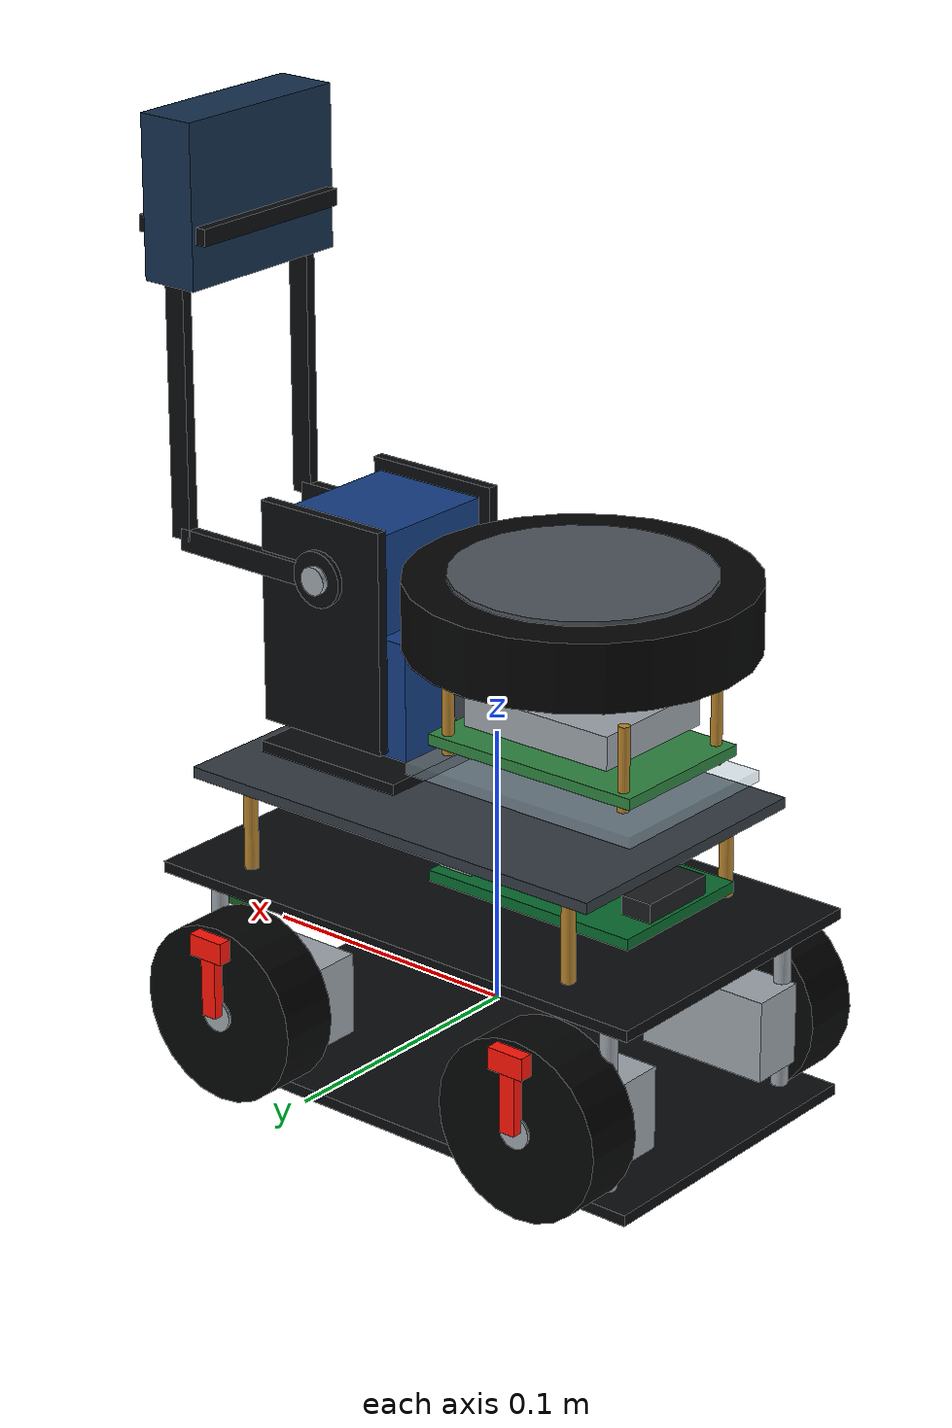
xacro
<?xml version="1.0"?>
<robot xmlns:xacro="http://www.ros.org/wiki/xacro" name="small_car">
  <xacro:include filename="$(find small_car_description)/urdf/robot_geometry.xacro"/>

  <material name="metal_black"><color rgba="0.035 0.040 0.045 1.0"/></material>
  <material name="plastic_black"><color rgba="0.012 0.014 0.016 1.0"/></material>
  <material name="dark_gray"><color rgba="0.10 0.11 0.12 1.0"/></material>
  <material name="plate_gray"><color rgba="0.20 0.23 0.26 1.0"/></material>
  <material name="mcu_green"><color rgba="0.03 0.42 0.18 1.0"/></material>
  <material name="pi_green"><color rgba="0.18 0.52 0.25 1.0"/></material>
  <material name="sensor_green"><color rgba="0.08 0.36 0.14 1.0"/></material>
  <material name="sensor_blue"><color rgba="0.10 0.40 0.82 1.0"/></material>
  <material name="servo_blue"><color rgba="0.08 0.24 0.52 1.0"/></material>
  <material name="camera_blue"><color rgba="0.08 0.18 0.30 1.0"/></material>
  <material name="imu_orange"><color rgba="0.95 0.42 0.08 1.0"/></material>
  <material name="wheel_marker"><color rgba="1.00 0.08 0.03 1.0"/></material>
  <material name="speaker_gray"><color rgba="0.30 0.33 0.36 1.0"/></material>
  <material name="aluminum"><color rgba="0.62 0.65 0.68 1.0"/></material>
  <material name="brass"><color rgba="0.72 0.52 0.18 1.0"/></material>
  <material name="acrylic"><color rgba="0.72 0.82 0.88 0.45"/></material>
  <material name="lens"><color rgba="0.02 0.06 0.10 1.0"/></material>

  <xacro:macro name="box_visual" params="xyz rpy size material">
    <visual>
      <origin xyz="${xyz}" rpy="${rpy}"/>
      <geometry><box size="${size}"/></geometry>
      <material name="${material}"/>
    </visual>
  </xacro:macro>

  <xacro:macro name="cylinder_visual" params="xyz rpy radius length material">
    <visual>
      <origin xyz="${xyz}" rpy="${rpy}"/>
      <geometry><cylinder radius="${radius}" length="${length}"/></geometry>
      <material name="${material}"/>
    </visual>
  </xacro:macro>

  <!-- base_link 位于四个车轮轴线围成的矩形中心。 -->
  <link name="base_link">
    <xacro:box_visual xyz="0 0 ${lower_deck_z}" rpy="0 0 0"
                      size="${chassis_length} ${chassis_width} ${deck_thickness}"
                      material="metal_black"/>
    <xacro:box_visual xyz="0 0 ${main_deck_z}" rpy="0 0 0"
                      size="${chassis_length} ${chassis_width} ${deck_thickness}"
                      material="metal_black"/>

    <!-- 四个减速电机位于车轮内侧。 -->
    <xacro:box_visual xyz="0.066 0.043 0" rpy="0 0 0"
                      size="0.050 0.027 0.030" material="aluminum"/>
    <xacro:box_visual xyz="0.066 -0.043 0" rpy="0 0 0"
                      size="0.050 0.027 0.030" material="aluminum"/>
    <xacro:box_visual xyz="-0.066 0.043 0" rpy="0 0 0"
                      size="0.050 0.027 0.030" material="aluminum"/>
    <xacro:box_visual xyz="-0.066 -0.043 0" rpy="0 0 0"
                      size="0.050 0.027 0.030" material="aluminum"/>

    <!-- 下层板与主承载板之间的四根金属立柱。 -->
    <xacro:cylinder_visual xyz="0.086 0.048 0.0075" rpy="0 0 0"
                           radius="0.003" length="0.063" material="aluminum"/>
    <xacro:cylinder_visual xyz="0.086 -0.048 0.0075" rpy="0 0 0"
                           radius="0.003" length="0.063" material="aluminum"/>
    <xacro:cylinder_visual xyz="-0.086 0.048 0.0075" rpy="0 0 0"
                           radius="0.003" length="0.063" material="aluminum"/>
    <xacro:cylinder_visual xyz="-0.086 -0.048 0.0075" rpy="0 0 0"
                           radius="0.003" length="0.063" material="aluminum"/>

    <!-- 用简单包围盒表示底盘碰撞体，避免视觉细节增加碰撞计算量。 -->
    <collision>
      <origin xyz="0 0 0.0075"/>
      <geometry><box size="${chassis_length} 0.105 0.067"/></geometry>
    </collision>
  </link>

  <xacro:macro name="wheel" params="prefix x y axis_y">
    <link name="${prefix}_wheel_link">
      <xacro:cylinder_visual xyz="0 0 0" rpy="1.57079632679 0 0"
                             radius="${wheel_radius}" length="${wheel_width}"
                             material="plastic_black"/>
    <xacro:cylinder_visual xyz="0 0 0" rpy="1.57079632679 0 0"
                             radius="0.006" length="${wheel_width + 0.002}"
                             material="aluminum"/>
      <!--
        红色非对称辐条位于轮胎外侧。它从轮心指向轮缘，随 wheel_link
        一起旋转，因此既能观察旋转方向，也不会产生 180 度视觉混淆。
      -->
      <xacro:box_visual
          xyz="0 ${axis_y * (wheel_width / 2.0 + 0.0025)} ${wheel_radius * 0.42}"
          rpy="0 0 0" size="0.006 0.004 0.026" material="wheel_marker"/>
      <xacro:box_visual
          xyz="0 ${axis_y * (wheel_width / 2.0 + 0.0030)} ${wheel_radius * 0.82}"
          rpy="0 0 0" size="0.014 0.005 0.008" material="wheel_marker"/>
      <collision>
        <origin rpy="1.57079632679 0 0"/>
        <geometry><cylinder radius="${wheel_radius}" length="${wheel_width}"/></geometry>
      </collision>
    </link>
    <joint name="${prefix}_wheel_joint" type="continuous">
      <parent link="base_link"/>
      <child link="${prefix}_wheel_link"/>
      <origin xyz="${x} ${y} 0"/>
      <axis xyz="0 ${axis_y} 0"/>
    </joint>
  </xacro:macro>

  <xacro:wheel prefix="front_left" x="${wheelbase / 2.0}"
               y="${wheel_track / 2.0}" axis_y="1"/>
  <xacro:wheel prefix="rear_left" x="${-wheelbase / 2.0}"
               y="${wheel_track / 2.0}" axis_y="1"/>
  <xacro:wheel prefix="front_right" x="${wheelbase / 2.0}"
               y="${-wheel_track / 2.0}" axis_y="-1"/>
  <xacro:wheel prefix="rear_right" x="${-wheelbase / 2.0}"
               y="${-wheel_track / 2.0}" axis_y="-1"/>

  <!-- 摄像头、树莓派和音响共用的新增载荷安装板。 -->
  <link name="upper_plate_link">
    <xacro:box_visual xyz="0 0 0" rpy="0 0 0" size="${upper_plate_size}"
                      material="plate_gray"/>
    <xacro:cylinder_visual xyz="0.070 0.043 -0.018" rpy="0 0 0"
                           radius="0.0025" length="0.034" material="brass"/>
    <xacro:cylinder_visual xyz="0.070 -0.043 -0.018" rpy="0 0 0"
                           radius="0.0025" length="0.034" material="brass"/>
    <xacro:cylinder_visual xyz="-0.070 0.043 -0.018" rpy="0 0 0"
                           radius="0.0025" length="0.034" material="brass"/>
    <xacro:cylinder_visual xyz="-0.070 -0.043 -0.018" rpy="0 0 0"
                           radius="0.0025" length="0.034" material="brass"/>
  </link>
  <joint name="upper_plate_joint" type="fixed">
    <parent link="base_link"/>
    <child link="upper_plate_link"/>
    <origin xyz="${upper_plate_xyz}"/>
  </joint>

  <!-- C30D MCU 主控板位于两层安装板之间，并保持水平。 -->
  <link name="mcu_link">
    <xacro:box_visual xyz="0 0 0" rpy="0 0 0" size="${mcu_size}"
                      material="mcu_green"/>
    <xacro:box_visual xyz="0.005 0 0.005" rpy="0 0 0" size="0.026 0.026 0.006"
                      material="plastic_black"/>
    <xacro:box_visual xyz="0.035 0.018 0.005" rpy="0 0 0" size="0.014 0.012 0.008"
                      material="aluminum"/>
    <xacro:box_visual xyz="0.035 -0.018 0.005" rpy="0 0 0" size="0.014 0.012 0.008"
                      material="aluminum"/>
    <xacro:box_visual xyz="-0.035 0 0.005" rpy="0 0 0" size="0.012 0.030 0.008"
                      material="dark_gray"/>
  </link>
  <joint name="mcu_joint" type="fixed">
    <parent link="base_link"/>
    <child link="mcu_link"/>
    <origin xyz="${mcu_xyz}"/>
  </joint>

  <!-- IMU 是 MCU 板上的板载器件，水平姿态与 PCB 一致。 -->
  <link name="imu_link">
    <xacro:box_visual xyz="0 0 0" rpy="0 0 0" size="0.015 0.015 0.004"
                      material="imu_orange"/>
  </link>
  <joint name="imu_joint" type="fixed">
    <parent link="mcu_link"/>
    <child link="imu_link"/>
    <origin xyz="${imu_xyz}" rpy="${imu_rpy}"/>
  </joint>

  <!-- HC-SR04 类双探头超声模块。 -->
  <link name="ultrasonic_link">
    <xacro:box_visual xyz="-0.006 0 0" rpy="0 0 0" size="0.012 0.050 0.022"
                      material="sensor_green"/>
    <xacro:cylinder_visual xyz="0 0.012 0" rpy="0 1.57079632679 0"
                           radius="0.008" length="0.014" material="aluminum"/>
    <xacro:cylinder_visual xyz="0 -0.012 0" rpy="0 1.57079632679 0"
                           radius="0.008" length="0.014" material="aluminum"/>
  </link>
  <joint name="ultrasonic_joint" type="fixed">
    <parent link="base_link"/>
    <child link="ultrasonic_link"/>
    <origin xyz="${ultrasonic_xyz}" rpy="${ultrasonic_rpy}"/>
  </joint>

  <!-- 树莓派、透明安装板和顶部散热器。 -->
  <link name="computer_link">
    <xacro:box_visual xyz="0 0 -0.010" rpy="0 0 0" size="0.095 0.070 0.004"
                      material="acrylic"/>
    <xacro:box_visual xyz="0 0 0" rpy="0 0 0" size="${computer_size}"
                      material="pi_green"/>
    <xacro:box_visual xyz="0 0 0.013" rpy="0 0 0" size="0.060 0.050 0.012"
                      material="aluminum"/>
    <xacro:cylinder_visual xyz="0.037 0.025 0.010" rpy="0 0 0"
                           radius="0.002" length="0.030" material="brass"/>
    <xacro:cylinder_visual xyz="0.037 -0.025 0.010" rpy="0 0 0"
                           radius="0.002" length="0.030" material="brass"/>
    <xacro:cylinder_visual xyz="-0.037 0.025 0.010" rpy="0 0 0"
                           radius="0.002" length="0.030" material="brass"/>
    <xacro:cylinder_visual xyz="-0.037 -0.025 0.010" rpy="0 0 0"
                           radius="0.002" length="0.030" material="brass"/>
  </link>
  <joint name="computer_joint" type="fixed">
    <parent link="base_link"/>
    <child link="computer_link"/>
    <origin xyz="${computer_xyz}"/>
  </joint>

  <!-- Jabra 圆形 USB 音响，平放在树莓派上方。 -->
  <link name="speaker_link">
    <xacro:cylinder_visual xyz="0 0 0" rpy="0 0 0"
                           radius="${speaker_radius}" length="${speaker_height}"
                           material="plastic_black"/>
    <xacro:cylinder_visual xyz="0 0 0.0125" rpy="0 0 0"
                           radius="0.045" length="0.002" material="speaker_gray"/>
  </link>
  <joint name="speaker_joint" type="fixed">
    <parent link="base_link"/>
    <child link="speaker_link"/>
    <origin xyz="${speaker_xyz}"/>
  </joint>

  <!-- 上层舵机及其底座随 upper_servo_joint 绕 z 轴旋转。 -->
  <link name="pan_link">
    <xacro:box_visual xyz="0 0 0" rpy="0 0 0" size="0.060 0.058 0.004"
                      material="metal_black"/>
    <xacro:box_visual xyz="0 0 0.023" rpy="0 0 0" size="0.042 0.024 0.044"
                      material="servo_blue"/>
    <xacro:box_visual xyz="0 0.029 0.052" rpy="0 0 0" size="0.052 0.004 0.080"
                      material="metal_black"/>
    <xacro:box_visual xyz="0 -0.029 0.052" rpy="0 0 0" size="0.052 0.004 0.080"
                      material="metal_black"/>
    <!-- 上方俯仰舵机的外壳固定在水平旋转云台上，本身不参与俯仰。 -->
    <xacro:box_visual xyz="0 0 0.070" rpy="0 0 0" size="0.044 0.052 0.036"
                      material="servo_blue"/>
  </link>
  <joint name="upper_servo_joint" type="revolute">
    <parent link="base_link"/>
    <child link="pan_link"/>
    <origin xyz="${pan_joint_xyz}"/>
    <axis xyz="0 0 1"/>
    <limit lower="-1.57079632679" upper="1.57079632679" effort="1.0" velocity="2.0"/>
  </joint>

  <!--
    俯仰运动部分从舵机横向输出轴开始。横轴沿 y 方向，轴两端连接
    相机支架；lower_servo_joint 转动时，横轴、支架和相机一起旋转。
  -->
  <link name="tilt_link">
    <!-- 贯穿舵机两侧的横向输出轴。 -->
    <xacro:cylinder_visual xyz="0 0 0" rpy="1.57079632679 0 0"
                           radius="0.005" length="0.070" material="aluminum"/>
    <!-- 输出轴两侧的圆形舵盘。 -->
    <xacro:cylinder_visual xyz="0 0.030 0" rpy="1.57079632679 0 0"
                           radius="0.010" length="0.006" material="metal_black"/>
    <xacro:cylinder_visual xyz="0 -0.030 0" rpy="1.57079632679 0 0"
                           radius="0.010" length="0.006" material="metal_black"/>
    <!--
      两侧摆臂从横轴沿 +x 向车头伸出，再向上折弯。侧面观察时呈
      卧式 L/C 形，与实车照片中红框标出的相机承载结构一致。
    -->
    <xacro:box_visual xyz="0.031 0.031 0" rpy="0 0 0" size="0.062 0.004 0.008"
                      material="metal_black"/>
    <xacro:box_visual xyz="0.031 -0.031 0" rpy="0 0 0" size="0.062 0.004 0.008"
                      material="metal_black"/>
    <xacro:box_visual xyz="0.062 0.031 0.055" rpy="0 0 0" size="0.008 0.004 0.110"
                      material="metal_black"/>
    <xacro:box_visual xyz="0.062 -0.031 0.055" rpy="0 0 0" size="0.008 0.004 0.110"
                      material="metal_black"/>
    <!-- 顶部横梁连接左右摆臂，并提供相机安装平面。 -->
    <xacro:box_visual xyz="0.062 0 0.110" rpy="0 0 0" size="0.030 0.066 0.006"
                      material="metal_black"/>
  </link>
  <joint name="lower_servo_joint" type="revolute">
    <parent link="pan_link"/>
    <child link="tilt_link"/>
    <origin xyz="${tilt_joint_xyz}"/>
    <axis xyz="0 1 0"/>
    <limit lower="-1.57079632679" upper="1.57079632679" effort="1.0" velocity="2.0"/>
  </joint>

  <!-- C100 RGB 方形相机，镜头朝向车体 +x。 -->
  <link name="camera_link">
    <xacro:box_visual xyz="0 0 0" rpy="0 0 0" size="${camera_size}"
                      material="camera_blue"/>
    <xacro:cylinder_visual xyz="0.014 0 0" rpy="0 1.57079632679 0"
                           radius="0.014" length="0.010" material="plastic_black"/>
    <xacro:cylinder_visual xyz="0.020 0 0" rpy="0 1.57079632679 0"
                           radius="0.007" length="0.004" material="lens"/>
  </link>
  <joint name="camera_joint" type="fixed">
    <parent link="tilt_link"/>
    <child link="camera_link"/>
    <origin xyz="${camera_xyz}"/>
  </joint>

  <!-- ROS 光学坐标系：z 向前、x 向右、y 向下。 -->
  <link name="camera_optical_frame"/>
  <joint name="camera_optical_joint" type="fixed">
    <parent link="camera_link"/>
    <child link="camera_optical_frame"/>
    <origin xyz="0.022 0 0" rpy="-1.57079632679 0 -1.57079632679"/>
  </joint>
</robot>

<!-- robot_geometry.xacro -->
<robot xmlns:xacro="http://www.ros.org/wiki/xacro">
  <!-- 坐标约定：x 向前，y 向左，z 向上；长度单位为米，角度单位为弧度。 -->

  <!-- 厂家给出的 R3X 四驱底盘外形为 203.5 mm × 145 mm × 76 mm。 -->
  <xacro:property name="chassis_length" value="0.2035"/>
  <xacro:property name="chassis_width" value="0.118"/>
  <xacro:property name="chassis_height" value="0.076"/>
  <xacro:property name="lower_deck_z" value="-0.026"/>
  <xacro:property name="main_deck_z" value="0.041"/>
  <xacro:property name="deck_thickness" value="0.004"/>

  <!-- 轮胎尺寸和轴距按底盘照片估算，里程计仍使用独立标定参数。 -->
  <xacro:property name="wheelbase" value="0.132"/>
  <xacro:property name="wheel_track" value="0.121"/>
  <xacro:property name="wheel_radius" value="0.0325"/>
  <xacro:property name="wheel_width" value="0.022"/>

  <!-- 新增载荷安装板位于原车上层底盘之上。 -->
  <xacro:property name="upper_plate_xyz" value="0.005 0.0 0.078"/>
  <xacro:property name="upper_plate_size" value="0.172 0.108 0.004"/>

  <!-- C30D MCU 主控板水平安装在底盘主承载板和上层载荷板之间。 -->
  <xacro:property name="mcu_xyz" value="-0.036 0.0 0.055"/>
  <xacro:property name="mcu_size" value="0.085 0.058 0.004"/>

  <!-- ICM20948 焊接在 MCU 板上，其坐标轴平面与 PCB 平面平行。 -->
  <xacro:property name="imu_xyz" value="0.022 -0.017 0.006"/>
  <xacro:property name="imu_rpy" value="0.0 0.0 0.0"/>

  <!-- 前置超声模块的原点位于两个换能器中心，波束沿 +x 方向。 -->
  <xacro:property name="ultrasonic_xyz" value="0.105 0.0 0.025"/>
  <xacro:property name="ultrasonic_rpy" value="0.0 0.0 0.0"/>

  <!-- 树莓派安装在车体后半部，圆形音频设备位于其正上方。 -->
  <xacro:property name="computer_xyz" value="-0.036 0.0 0.105"/>
  <xacro:property name="computer_size" value="0.085 0.058 0.004"/>
  <xacro:property name="speaker_xyz" value="-0.036 0.0 0.153"/>
  <xacro:property name="speaker_radius" value="0.060"/>
  <xacro:property name="speaker_height" value="0.024"/>

  <!--
    相机云台位于车体前半部。upper_servo_joint 为上层水平旋转，
    lower_servo_joint 为下层俯仰旋转，名称与底盘节点保持一致。
  -->
  <xacro:property name="pan_joint_xyz" value="0.052 0.0 0.082"/>
  <xacro:property name="tilt_joint_xyz" value="0.0 0.0 0.070"/>
  <xacro:property name="camera_xyz" value="0.062 0.0 0.120"/>
  <xacro:property name="camera_size" value="0.022 0.070 0.058"/>
</robot>
